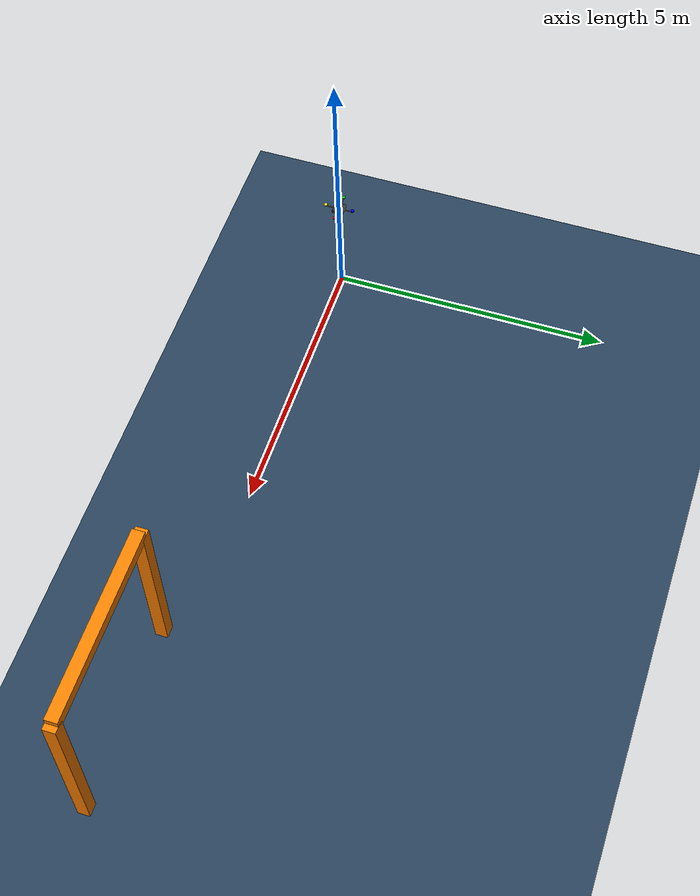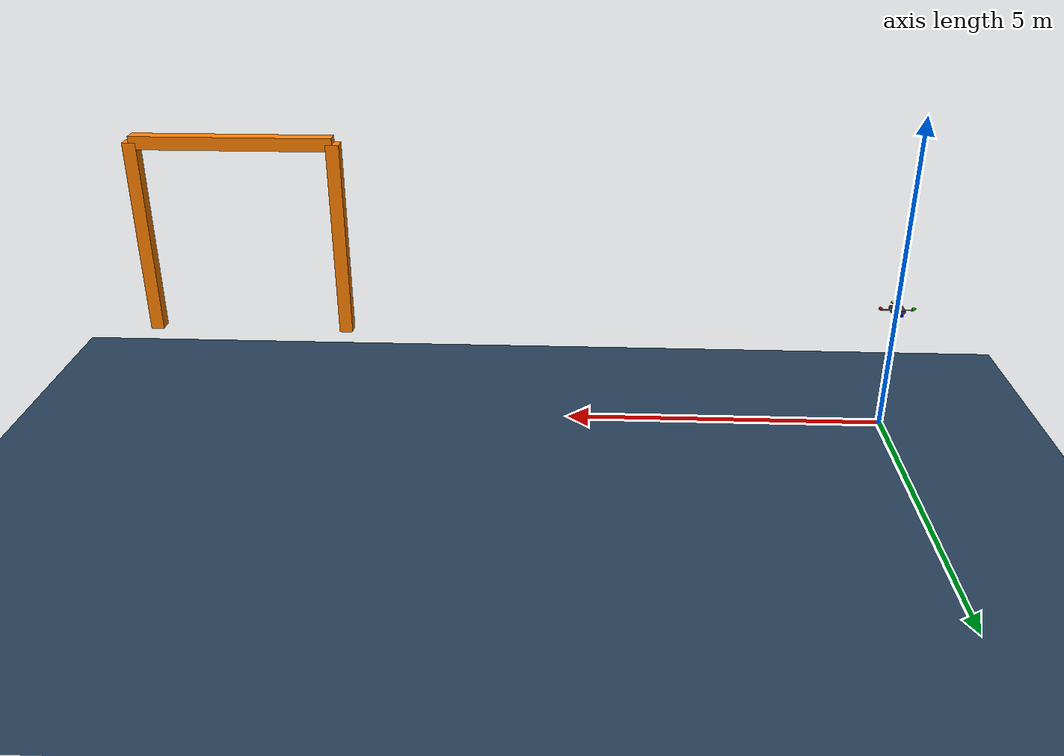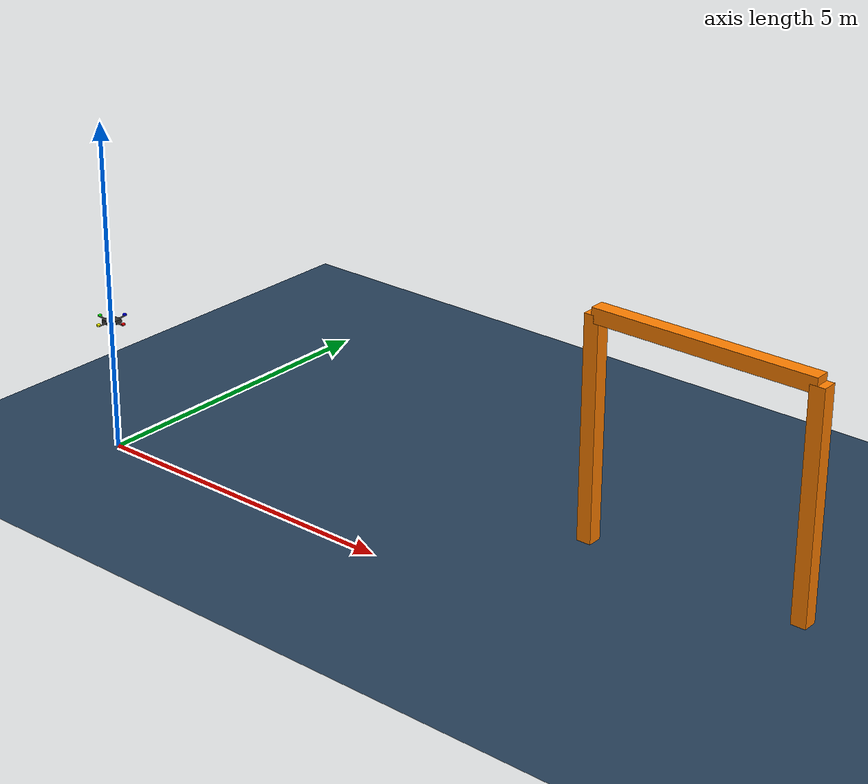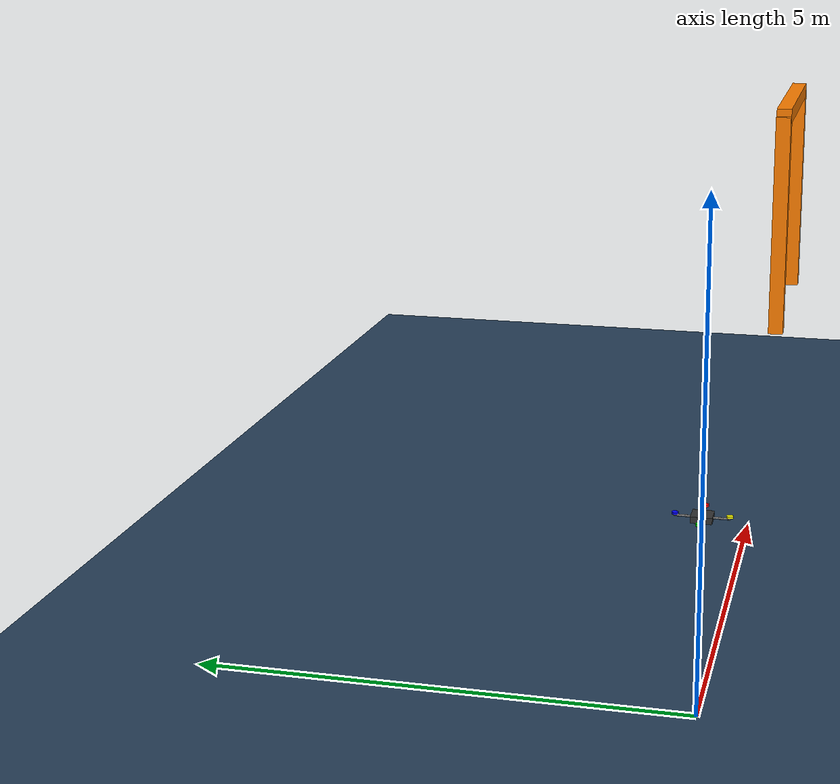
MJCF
<mujoco model="quadrotor">
  <!--
    Quadrotor Model for Maria Physics
    4 motors in + configuration (not X)
    Motor 1: +X (Front)
    Motor 2: -X (Back)
    Motor 3: +Y (Left)
    Motor 4: -Y (Right)
  -->

  <option gravity="0 0 -9.81" timestep="0.002"/>

  <asset>
    <texture type="skybox" builtin="gradient" rgb1="0.3 0.5 0.7" rgb2="0 0 0" width="512" height="512"/>
    <texture name="grid" type="2d" builtin="checker" width="512" height="512" rgb1="0.1 0.2 0.3" rgb2="0.2 0.3 0.4"/>
    <material name="grid" texture="grid" texrepeat="8 8" reflectance="0.2"/>
  </asset>

  <worldbody>
    <!-- Ground plane -->
    <geom name="floor" type="plane" size="50 50 0.1" material="grid"/>

    <!-- The Quadrotor Body -->
    <body name="drone" pos="0 0 2">
      <freejoint name="root"/>

      <!-- Central body (fuselage) -->
      <geom name="body" type="box" size="0.1 0.1 0.03" mass="0.5" rgba="0.2 0.2 0.2 1"/>

      <!-- Arms (4 directions) -->
      <geom name="arm1" type="capsule" fromto="0.1 0 0 0.25 0 0" size="0.01" mass="0.05" rgba="0.5 0.5 0.5 1"/>
      <geom name="arm2" type="capsule" fromto="-0.1 0 0 -0.25 0 0" size="0.01" mass="0.05" rgba="0.5 0.5 0.5 1"/>
      <geom name="arm3" type="capsule" fromto="0 0.1 0 0 0.25 0" size="0.01" mass="0.05" rgba="0.5 0.5 0.5 1"/>
      <geom name="arm4" type="capsule" fromto="0 -0.1 0 0 -0.25 0" size="0.01" mass="0.05" rgba="0.5 0.5 0.5 1"/>

      <!-- Motors (represented as small cylinders) -->
      <geom name="motor1" type="cylinder" pos="0.25 0 0.02" size="0.03 0.01" mass="0.02" rgba="1 0 0 1"/>
      <geom name="motor2" type="cylinder" pos="-0.25 0 0.02" size="0.03 0.01" mass="0.02" rgba="0 1 0 1"/>
      <geom name="motor3" type="cylinder" pos="0 0.25 0.02" size="0.03 0.01" mass="0.02" rgba="0 0 1 1"/>
      <geom name="motor4" type="cylinder" pos="0 -0.25 0.02" size="0.03 0.01" mass="0.02" rgba="1 1 0 1"/>

      <!-- Motor thrust application sites (where forces are applied) -->
      <site name="thrust_site1" pos="0.25 0 0.02" size="0.01"/>
      <site name="thrust_site2" pos="-0.25 0 0.02" size="0.01"/>
      <site name="thrust_site3" pos="0 0.25 0.02" size="0.01"/>
      <site name="thrust_site4" pos="0 -0.25 0.02" size="0.01"/>

      <!-- IMU sensor site (for reading orientation) -->
      <site name="imu" pos="0 0 0" size="0.01"/>
    </body>

    <!-- A simple gate to fly through -->
    <body name="gate1" pos="10 0 3">
      <geom name="gate_left" type="box" pos="-1.5 0 0" size="0.1 0.1 1.5" rgba="1 0.5 0 1"/>
      <geom name="gate_right" type="box" pos="1.5 0 0" size="0.1 0.1 1.5" rgba="1 0.5 0 1"/>
      <geom name="gate_top" type="box" pos="0 0 1.5" size="1.5 0.1 0.1" rgba="1 0.5 0 1"/>
    </body>
  </worldbody>

  <!-- Actuators: 4 motors applying upward thrust at their respective positions -->
  <actuator>
    <!-- Each motor applies force in the body's local Z direction at its position -->
    <general name="thrust1" site="thrust_site1" gear="0 0 1 0 0 0" ctrlrange="0 5" forcerange="0 5"/>
    <general name="thrust2" site="thrust_site2" gear="0 0 1 0 0 0" ctrlrange="0 5" forcerange="0 5"/>
    <general name="thrust3" site="thrust_site3" gear="0 0 1 0 0 0" ctrlrange="0 5" forcerange="0 5"/>
    <general name="thrust4" site="thrust_site4" gear="0 0 1 0 0 0" ctrlrange="0 5" forcerange="0 5"/>
  </actuator>

  <!-- Sensors -->
  <sensor>
    <framepos name="pos" objtype="site" objname="imu"/>
    <framequat name="quat" objtype="site" objname="imu"/>
    <framelinvel name="vel" objtype="site" objname="imu"/>
    <gyro name="gyro" site="imu"/>
    <accelerometer name="accel" site="imu"/>
  </sensor>
</mujoco>
